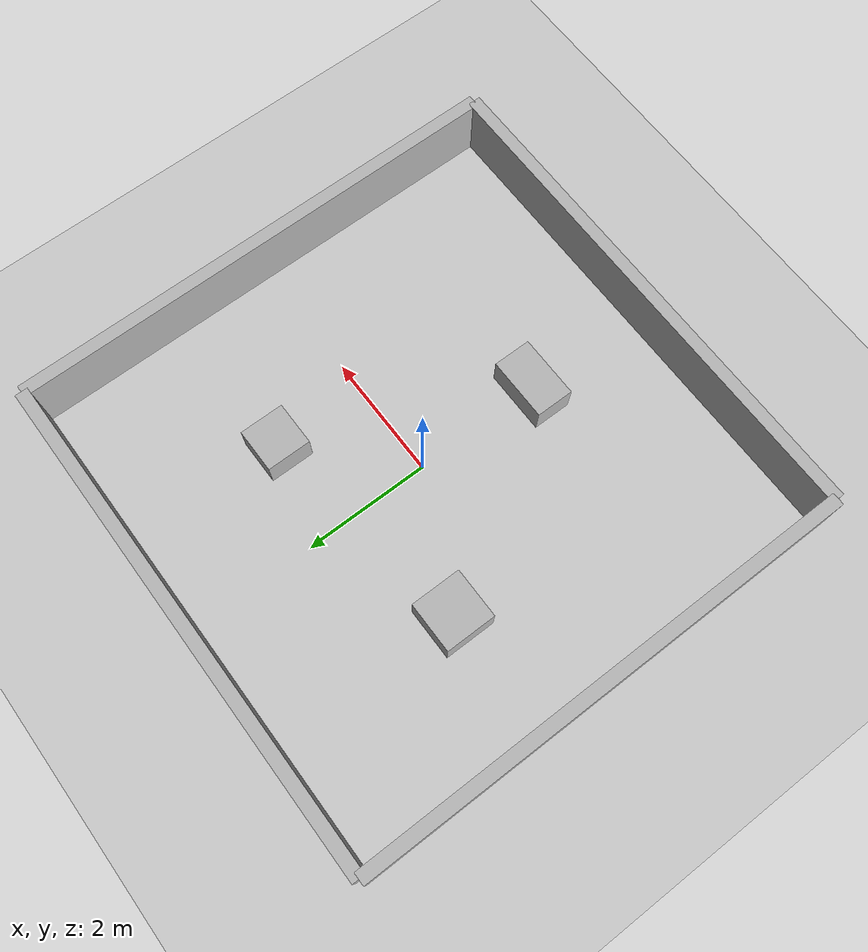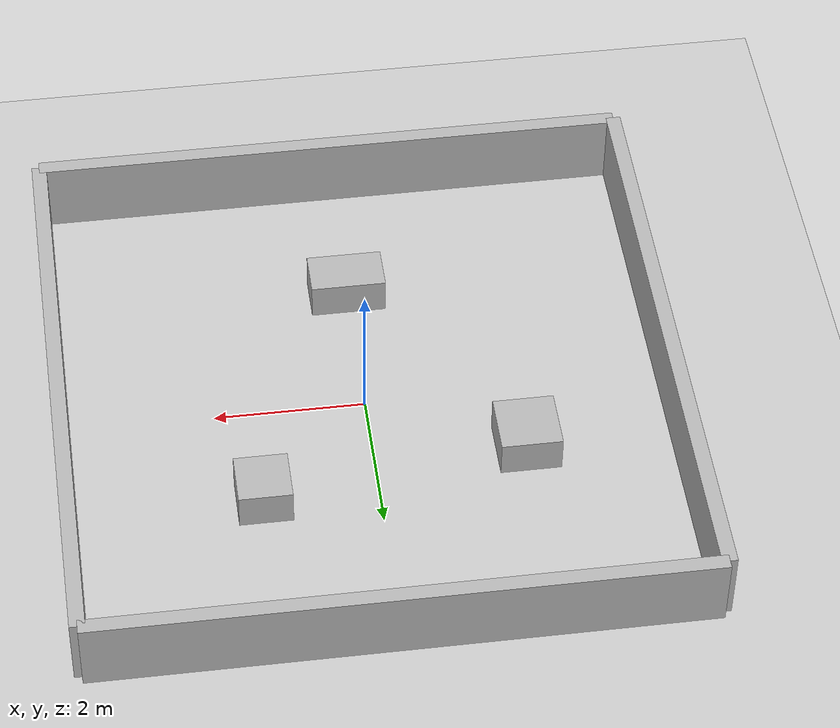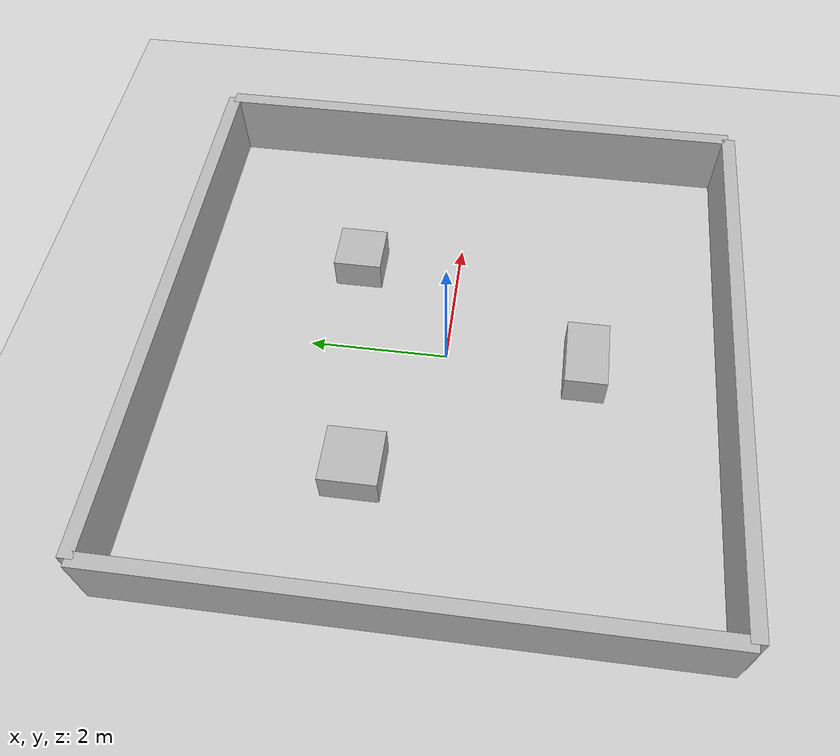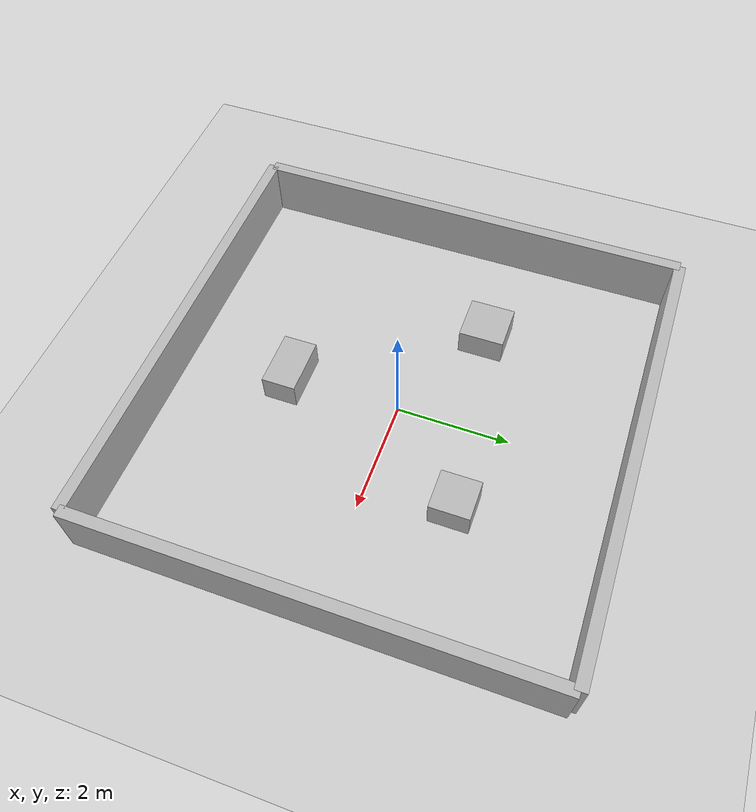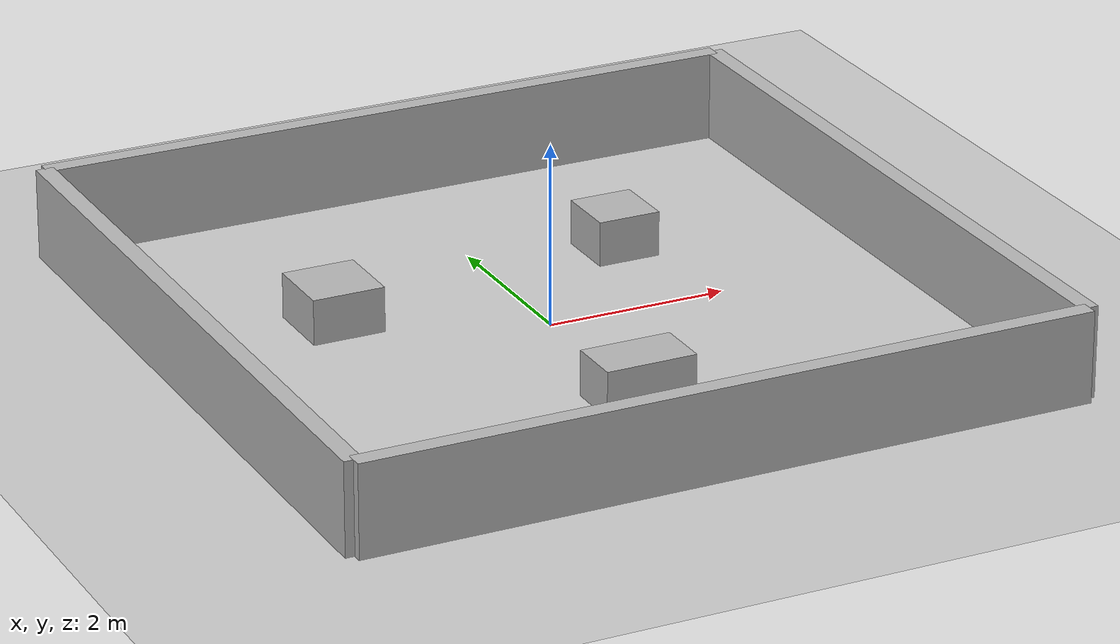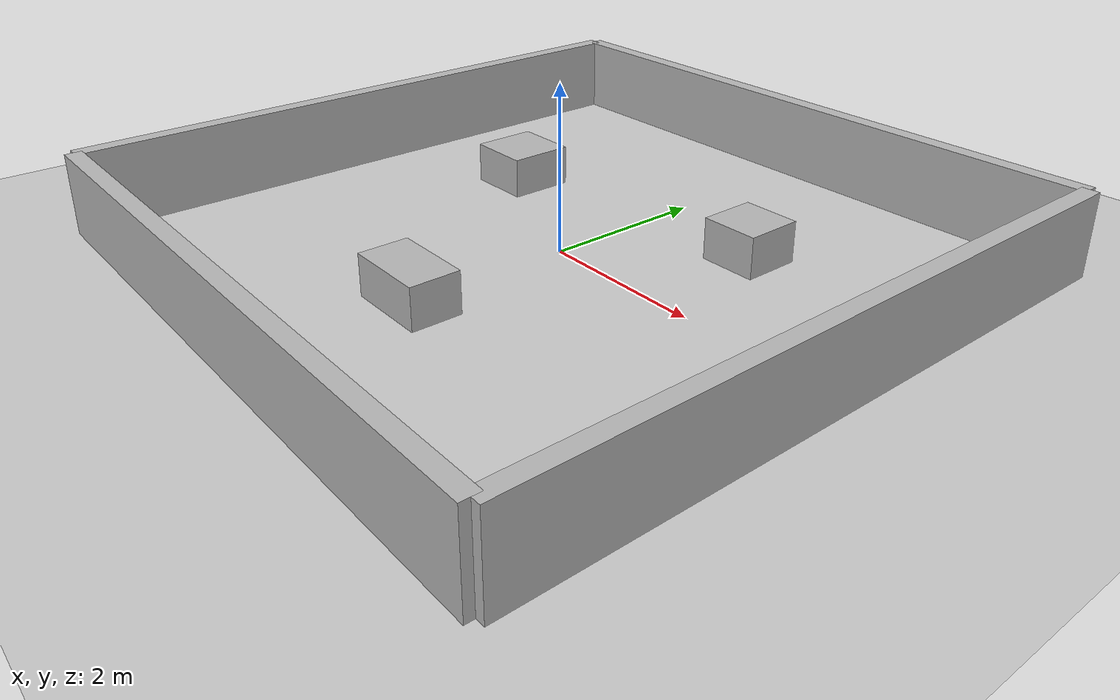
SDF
<?xml version="1.0" ?>
<sdf version="1.9">

  <world name="room_world">

<physics name="default_physics" type="ode">
  <max_step_size>0.001</max_step_size>
  <real_time_factor>1.0</real_time_factor>
  <ode>
    <solver>
      <type>world</type>
      <iters>150</iters>
    </solver>
    <constraints>
      <cfm>0.0001</cfm>
      <erp>0.2</erp>
      <contact_max_correcting_vel>100</contact_max_correcting_vel>
      <contact_surface_layer>0.001</contact_surface_layer>
    </constraints>
  </ode>
</physics>

    <plugin
      filename="gz-sim-physics-system"
      name="gz::sim::systems::Physics"/>

    <plugin
      filename="gz-sim-user-commands-system"
      name="gz::sim::systems::UserCommands"/>

    <plugin
      filename="gz-sim-scene-broadcaster-system"
      name="gz::sim::systems::SceneBroadcaster"/>

    <plugin
      filename="gz-sim-sensors-system"
      name="gz::sim::systems::Sensors">
      <render_engine>ogre2</render_engine>
    </plugin>

   <plugin
    filename="gz-sim-imu-system"
    name="gz::sim::systems::Imu"/>

    <!-- Sun -->
    <light name="sun" type="directional">
      <cast_shadows>true</cast_shadows>
      <pose>0 0 10 0 0 0</pose>
      <diffuse>1 1 1 1</diffuse>
      <specular>0.2 0.2 0.2 1</specular>
      <direction>-0.5 0.1 -0.9</direction>
    </light>

    <!-- Ground -->
    <model name="ground_plane">
      <static>true</static>
      <link name="link">
        <collision name="collision">
          <geometry>
            <plane>
              <normal>0 0 1</normal>
              <size>30 30</size>
            </plane>
          </geometry>

        </collision>

        <visual name="visual">
          <geometry>
            <plane>
              <normal>0 0 1</normal>
              <size>30 30</size>
            </plane>
          </geometry>
        </visual>
      </link>
    </model>

    <!-- Room Walls -->

    <model name="north_wall">
      <static>true</static>
      <pose>0 4 0.5 0 0 0</pose>
      <link name="link">
        <collision name="collision">
          <geometry>
            <box><size>8 0.2 1</size></box>
          </geometry>
        </collision>
        <visual name="visual">
          <geometry>
            <box><size>8 0.2 1</size></box>
          </geometry>
        </visual>
      </link>
    </model>

    <model name="south_wall">
      <static>true</static>
      <pose>0 -4 0.5 0 0 0</pose>
      <link name="link">
        <collision name="collision">
          <geometry>
            <box><size>8 0.2 1</size></box>
          </geometry>
        </collision>
        <visual name="visual">
          <geometry>
            <box><size>8 0.2 1</size></box>
          </geometry>
        </visual>
      </link>
    </model>

    <model name="east_wall">
      <static>true</static>
      <pose>4 0 0.5 0 0 0</pose>
      <link name="link">
        <collision name="collision">
          <geometry>
            <box><size>0.2 8 1</size></box>
          </geometry>
        </collision>
        <visual name="visual">
          <geometry>
            <box><size>0.2 8 1</size></box>
          </geometry>
        </visual>
      </link>
    </model>

    <model name="west_wall">
      <static>true</static>
      <pose>-4 0 0.5 0 0 0</pose>
      <link name="link">
        <collision name="collision">
          <geometry>
            <box><size>0.2 8 1</size></box>
          </geometry>
        </collision>
        <visual name="visual">
          <geometry>
            <box><size>0.2 8 1</size></box>
          </geometry>
        </visual>
      </link>
    </model>

    <!-- Obstacles -->

    <model name="box1">
      <static>true</static>
      <pose>1.5 1.5 0.25 0 0 0</pose>
      <link name="link">
        <collision name="collision">
          <geometry>
            <box><size>0.7 0.7 0.5</size></box>
          </geometry>
        </collision>
        <visual name="visual">
          <geometry>
            <box><size>0.7 0.7 0.5</size></box>
          </geometry>
        </visual>
      </link>
    </model>

    <model name="box2">
      <static>true</static>
      <pose>-2 1 0.25 0 0 0</pose>
      <link name="link">
        <collision name="collision">
          <geometry>
            <box><size>0.8 0.8 0.5</size></box>
          </geometry>
        </collision>
        <visual name="visual">
          <geometry>
            <box><size>0.8 0.8 0.5</size></box>
          </geometry>
        </visual>
      </link>
    </model>

    <model name="box3">
      <static>true</static>
      <pose>0 -2 0.25 0 0 0</pose>
      <link name="link">
        <collision name="collision">
          <geometry>
            <box><size>1 0.6 0.5</size></box>
          </geometry>
        </collision>
        <visual name="visual">
          <geometry>
            <box><size>1 0.6 0.5</size></box>
          </geometry>
        </visual>
      </link>
    </model>

  </world>

</sdf>
